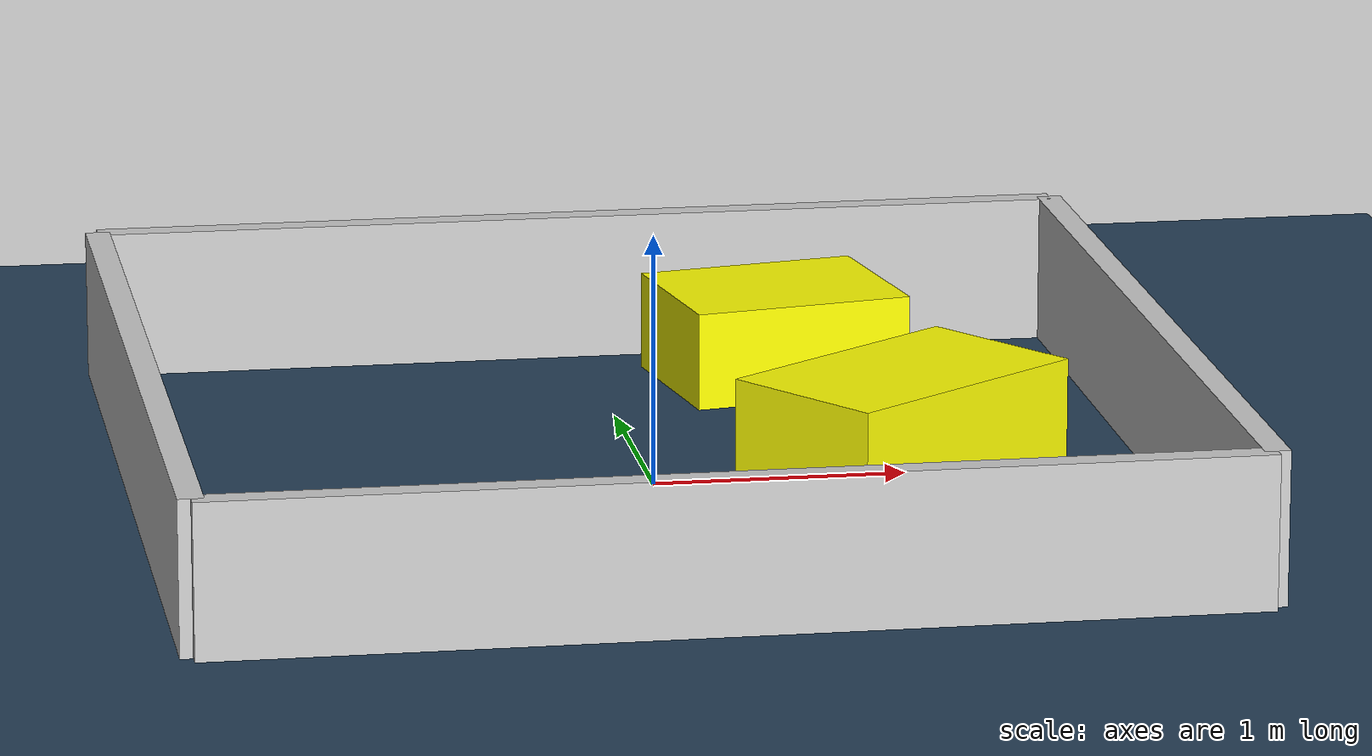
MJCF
<?xml version="1.0" ?>
<mujoco model="generated_environment">
  <option timestep="0.01" integrator="RK4" cone="elliptic"/>
  <default>
    <geom density="1"/>
  </default>
  <asset>
    <texture builtin="gradient" height="3072" rgb1="0.3 0.5 0.7" rgb2="0 0 0" type="skybox" width="512"/>
    <texture builtin="checker" height="300" mark="edge" markrgb="0.8 0.8 0.8" name="groundplane" rgb1="0.2 0.3 0.4" rgb2="0.1 0.2 0.3" type="2d" width="300"/>
    <material name="groundplane" reflectance="0.2" texrepeat="5 5" texture="groundplane" texuniform="true"/>
    <material name="robot" rgba="0.0 1.0 0.0 1"/>
  </asset>
  <worldbody>
    <light dir="0 0 -1" directional="true" pos="0 0 1.5"/>
    <geom condim="4" friction="1.0 0.005 0.001" material="groundplane" name="floor" size="0 0 0.05" type="plane"/>
    <body name="walls">
      <geom name="wall_1" condim="4" pos="-2.0 0.0 0.3" rgba="0.800000011920929 0.800000011920929 0.800000011920929 1.0" size="0.05 2.0 0.3" type="box"/>
      <geom name="wall_2" condim="4" pos="2.0 0.0 0.3" rgba="0.800000011920929 0.800000011920929 0.800000011920929 1.0" size="0.05 2.0 0.3" type="box"/>
      <geom name="wall_3" condim="4" pos="0.0 -2.0 0.3" rgba="0.800000011920929 0.800000011920929 0.800000011920929 1.0" size="2.0 0.05 0.3" type="box"/>
      <geom name="wall_4" condim="4" pos="0.0 2.0 0.3" rgba="0.800000011920929 0.800000011920929 0.800000011920929 1.0" size="2.0 0.05 0.3" type="box"/>
    </body>
    <body name="robot">
      <joint name="joint_x" type="slide" pos="0 0 0" axis="1 0 0"/>
      <joint name="joint_y" type="slide" pos="0 0 0" axis="0 1 0"/>
      <geom name="robot" type="sphere" pos="-0.3074503675466296 -0.8299590567897649 0.2" size="0.05" mass="5." friction="1.0 0.005 0.0001" condim="4"/>
      <site name="sensor_ball"/>
    </body>
    <body name="obstacle_1_movable">
      <geom name="obstacle_1_movable" condim="4" pos="0.7393755660150125 1.472241533397887 0.2" euler="0 0 99.91926579041507" friction="1.0 0.005 0.001" rgba="1 1 0 1" size="0.360577636013805 0.4561443365175913 0.2" type="box" mass="0.1"/>
      <joint type="free"/>
    </body>
    <body name="obstacle_2_movable">
      <geom name="obstacle_2_movable" condim="4" pos="1.005933332442586 0.08525053524695769 0.2" euler="0 0 305.7612116858593" friction="1.0 0.005 0.001" rgba="1 1 0 1" size="0.3560117188386439 0.5749638229454157 0.2" type="box" mass="0.1"/>
      <joint type="free"/>
    </body>
  </worldbody>
  <actuator>
    <motor name="actuator_x" joint="joint_x" gear="1" ctrlrange="-1 1"/>
    <motor name="actuator_y" joint="joint_y" gear="1" ctrlrange="-1 1"/>
  </actuator>
</mujoco>
